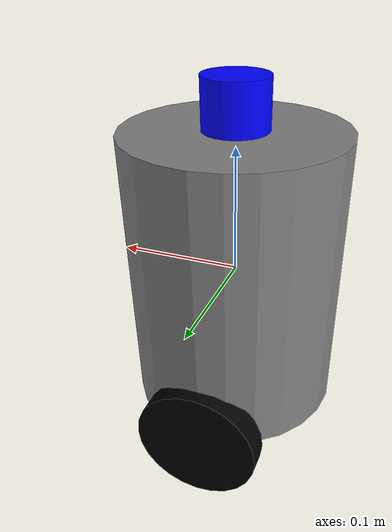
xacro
<robot name="turtle_robot">
    <!-- Główna baza robota (dolny walec) -->
    <link name="base_link">
        <visual>
            <geometry>
                <cylinder radius="0.085" length="0.225"/>
            </geometry>
            <material name="grey">
                <color rgba="0.5 0.5 0.5 1.0"/>
            </material>
        </visual>
        <collision>
            <geometry>
                <cylinder radius="0.085" length="0.225"/>
            </geometry>
        </collision>
        <inertial>
            <mass value="1.0"/>
            <origin xyz="0 0 0" />
            <inertia ixx="0.1" ixy="0.0" ixz="0.0" iyy="0.1" iyz="0.0" izz="0.1"/>
        </inertial>
    </link>

    <!-- Górny walec (drugi walec) -->
    <link name="upper_cylinder">
        <visual>
            <geometry>
                <cylinder radius="0.025" length="0.07"/>
            </geometry>
            <material name="blue">
                <color rgba="0.0 0.0 1.0 1.0"/>
            </material>
        </visual>
        <collision>
            <geometry>
                <cylinder radius="0.025" length="0.07"/>
            </geometry>
        </collision>
        <inertial>
            <mass value="0.2"/>
            <origin xyz="0 0 0.115" />
            <inertia ixx="0.01" ixy="0.0" ixz="0.0" iyy="0.01" iyz="0.0" izz="0.01"/>
        </inertial>
    </link>

    <!-- Połączenie głównej bazy z górnym walcem -->
    <joint name="upper_cylinder_joint" type="fixed">
        <parent link="base_link"/>
        <child link="upper_cylinder"/>
        <origin xyz="0 0 0.115" rpy="0 0 0"/>
    </joint>

    <!-- Lewe koło -->
    <link name="left_wheel">
        <visual>
            <geometry>
                <cylinder radius="0.05" length="0.02"/>
            </geometry>
            <material name="black">
                <color rgba="0.0 0.0 0.0 1.0"/>
            </material>
        </visual>
        <collision>
            <geometry>
                <cylinder radius="0.05" length="0.02"/>
            </geometry>
        </collision>
        <inertial>
            <mass value="0.1"/>
            <origin xyz="0 0 0"/>
            <inertia ixx="0.001" ixy="0.0" ixz="0.0" iyy="0.001" iyz="0.0" izz="0.001"/>
        </inertial>
    </link>

    <!-- Prawe koło -->
    <link name="right_wheel">
        <visual>
            <geometry>
                <cylinder radius="0.05" length="0.02"/>
            </geometry>
            <material name="black">
                <color rgba="0.0 0.0 0.0 1.0"/>
            </material>
        </visual>
        <collision>
            <geometry>
                <cylinder radius="0.05" length="0.02"/>
            </geometry>
        </collision>
        <inertial>
            <mass value="0.1"/>
            <origin xyz="0 0 0"/>
            <inertia ixx="0.001" ixy="0.0" ixz="0.0" iyy="0.001" iyz="0.0" izz="0.001"/>
        </inertial>
    </link>

    <!-- Połączenie lewego koła -->
    <joint name="left_wheel_joint" type="continuous">
        <parent link="base_link"/>
        <child link="left_wheel"/>
        <origin xyz="0 -0.085 -0.1125" rpy="1.5708 0 0"/>
        <axis xyz="0 0 1"/>
    </joint>

    <!-- Połączenie prawego koła -->
    <joint name="right_wheel_joint" type="continuous">
        <parent link="base_link"/>
        <child link="right_wheel"/>
        <origin xyz="0 0.085 -0.1125" rpy="1.5708 0 0"/>
        <axis xyz="0 0 1"/>
    </joint>
</robot>
